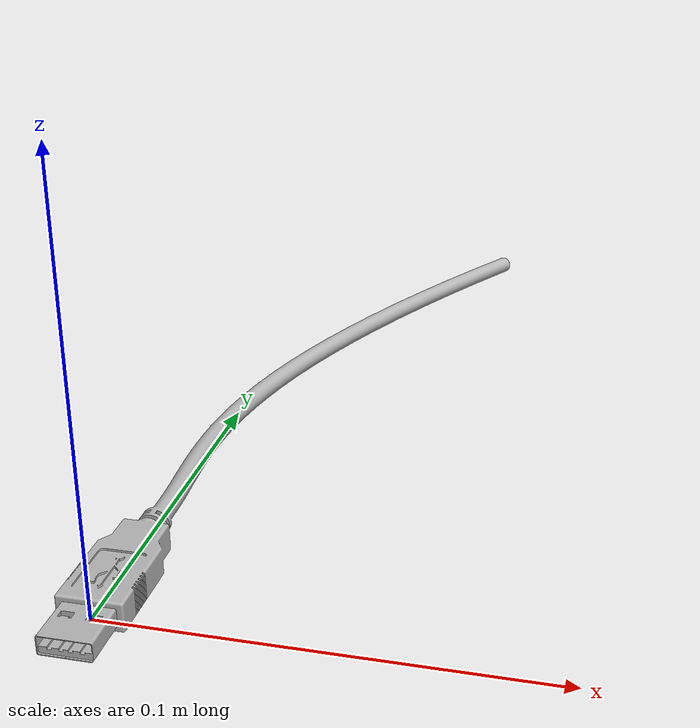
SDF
<?xml version='1.0'?>
<sdf version="1.4">
<model name="usb_cable">
  <pose>0 0 0  1.5708 0 0</pose>
  <static>true</static>
    <link name="link">

      <collision name="collision">
        <geometry>
          <mesh><uri>model://usb_cable/model.dae</uri></mesh>
        </geometry>
      </collision>

      <visual name="visual">
        <geometry>
          <mesh><uri>model://usb_cable/model.dae</uri></mesh>
        </geometry>
      </visual>
    </link>
  </model>
</sdf>
